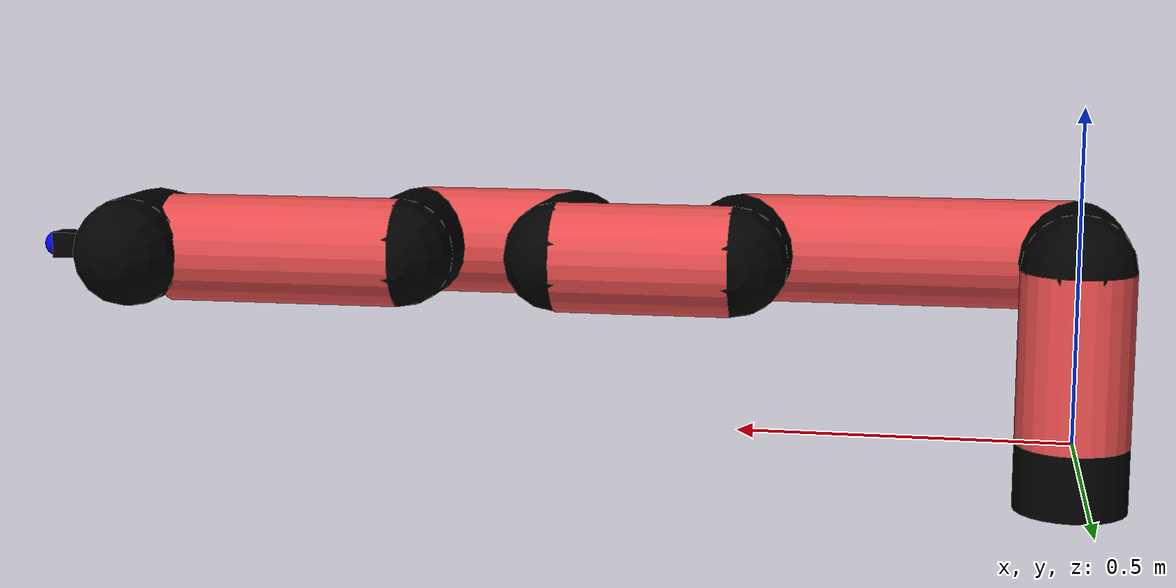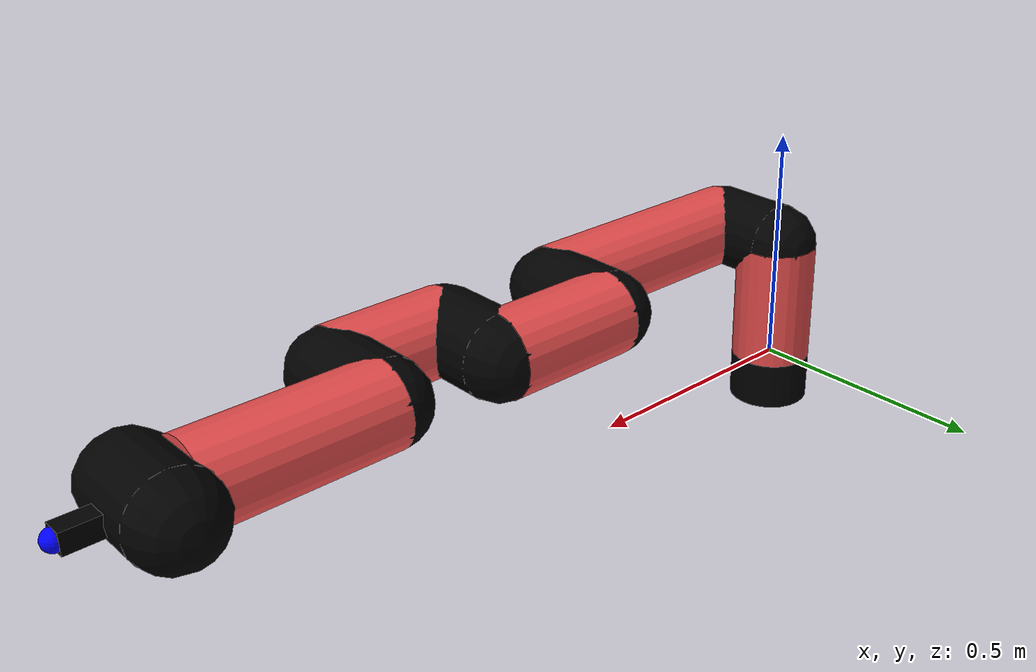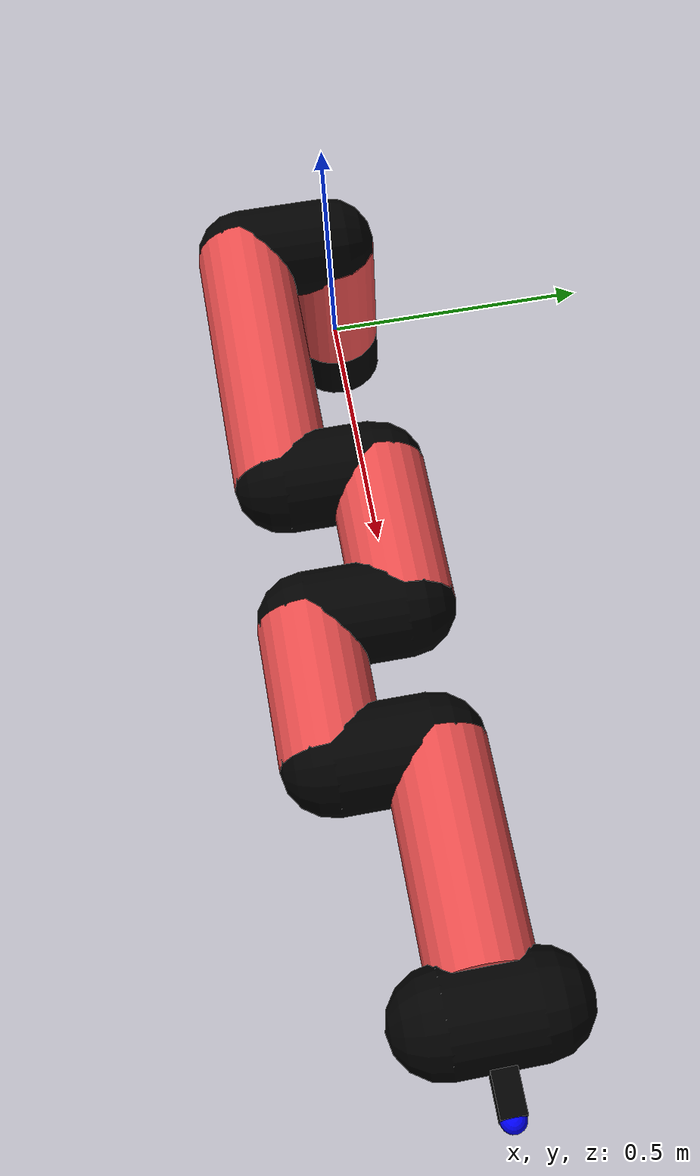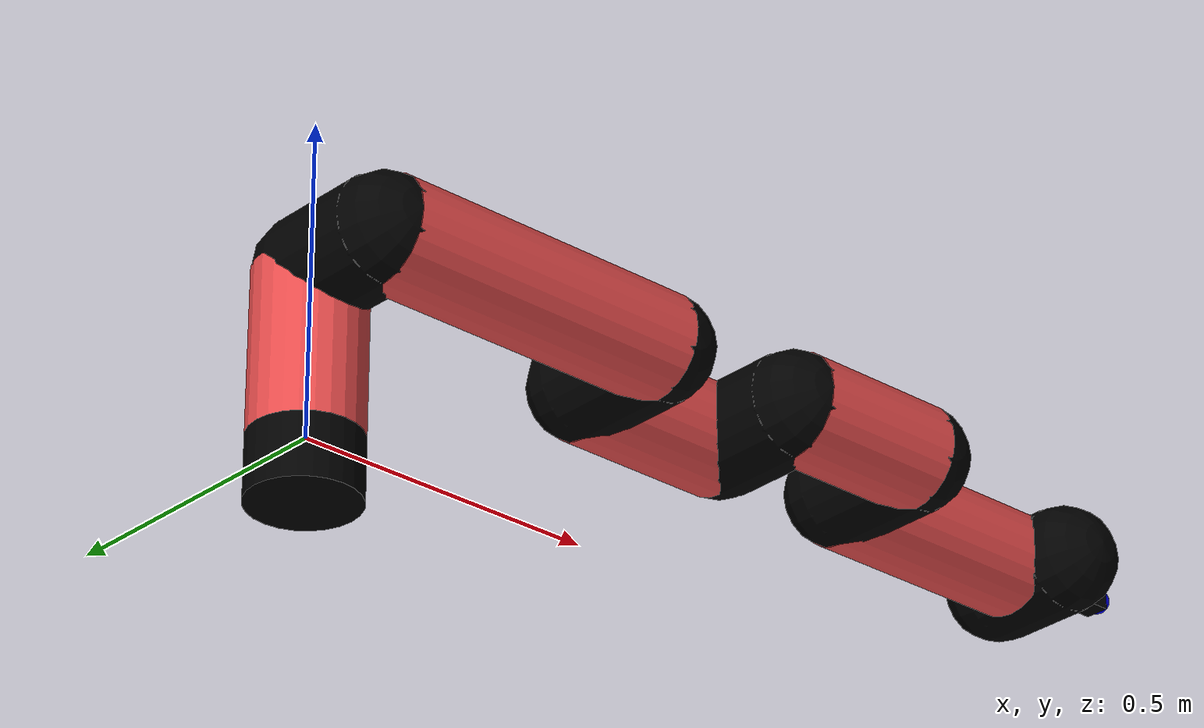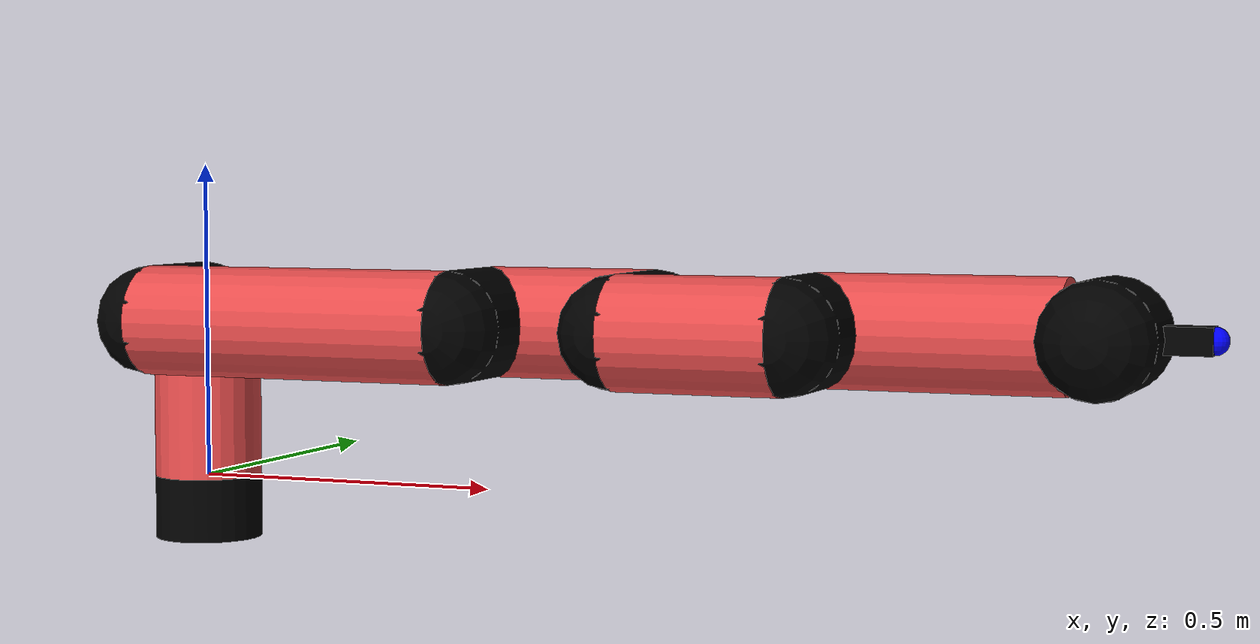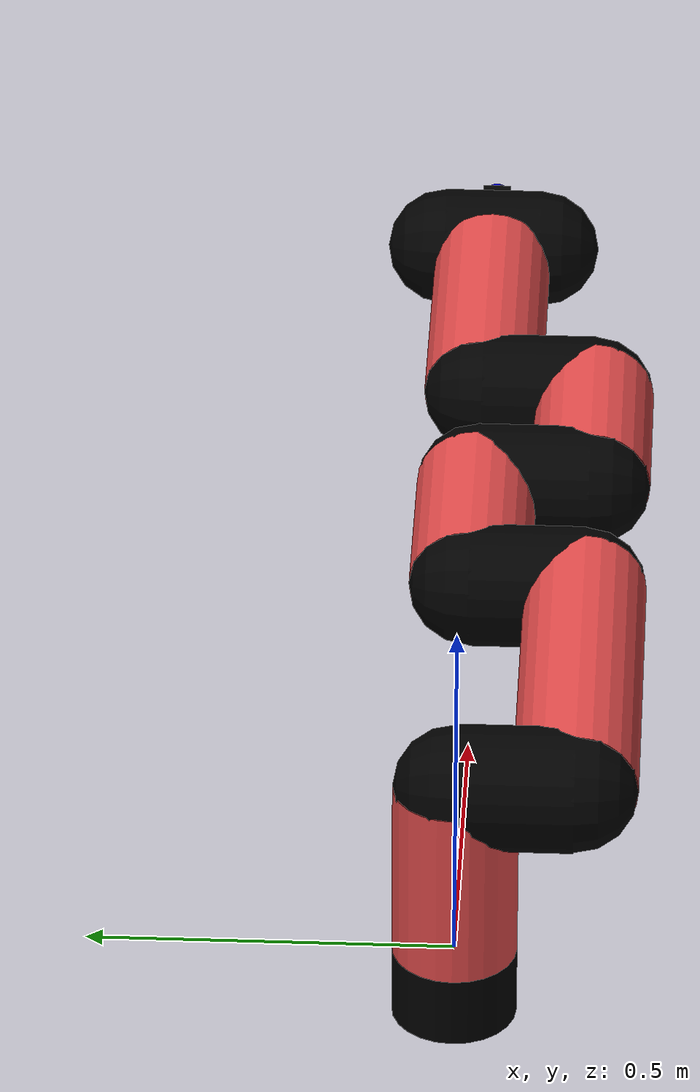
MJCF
<mujoco model="manipulator">
		<compiler angle="degree" coordinate="local" inertiafromgeom="auto" meshdir="meshes/"/>
		<option gravity="0 0 0" integrator="RK4" iterations="30" timestep="0.01"/>

		<default>
		<joint armature="1" limited="true" stiffness="10" damping="15" frictionloss="5.0"/>
		<geom conaffinity="1" condim="3" contype="1" friction=".5 .1 .1" margin="0.002"/>
		<motor ctrllimited="true"/>
		<position ctrllimited="true"/>
		</default>

		<asset>
		<texture builtin="gradient" height="100" rgb1="1.0 1.0 1.0" rgb2="1.0 1.0 1.0" type="skybox" width="100"/>
		<texture builtin="flat" height="32" name="arm_tex" rgb1="0.9 0.3 0.3" type="2d" width="32"/>
		<texture builtin="flat" height="32" name="gripper_tex" rgb1="0.0 0.0 0.0" type="cube" width="32"/>

		<material name="arm_mat" shininess="0.1" specular="0.1" texture="arm_tex"/>
		<material name="gripper_mat" shininess="1" specular="1" texture="gripper_tex"/>
		</asset>

		<worldbody>
		<light cutoff="45" diffuse=".8 .8 .8" dir="0 0.16 -1" directional="false" name="light" pos="0 -2.0 8.0" specular="0.3 0.3 0.3"/>

		<body name="base_link" pos="0 0 -0.1">
		<geom fromto="0 0 0 0 0 0.1" material="arm_mat" name="base_link" rgba="0.0 0.0 0.0 1" size="0.085" type="cylinder"/>
		</body>

		<body name="l1" pos="0 0 0">
<geom fromto="0 0 0 0 0 0.26" material="arm_mat" name="l1" rgba="0.9 0.3 0.3 1" size="0.085" type="cylinder"/>
<geom fromto="0 0 0.26 0 -0.16 0.26" material="arm_mat" name="l1_ex" rgba="0.0 0.0 0.0 1" size="0.085" type="capsule"/>
<joint axis="0 0 1" name="j1" pos="0 0 0" range="-90 90" damping="22.81" frictionloss="8.72"/>

<body name="l2" pos="0 -0.16 0.26">
<geom fromto="0 0 0 0.51 0 0" material="arm_mat" name="l2" rgba="0.9 0.3 0.3 1" size="0.085" type="cylinder"/>
<geom fromto="0.51 0 0 0.51 0.16 0" material="arm_mat" name="l2_ex" rgba="0.0 0.0 0.0 1" size="0.085" type="capsule"/>
<joint axis="-0.16 1.14 0.06" name="j2" pos="0 0 0" range="-90 60" damping="23.56" frictionloss="7.88"/>

<body name="l3" pos="0.51 0.16 0">
<geom fromto="0 0 0 0.27 0 0" material="arm_mat" name="l3" rgba="0.9 0.3 0.3 1" size="0.085" type="cylinder"/>
<geom fromto="0.27 0 0 0.27 -0.16 0" material="arm_mat" name="l3_ex" rgba="0.0 0.0 0.0 1" size="0.085" type="capsule"/>
<joint axis="-0.22 0.96 0.09" name="j3" pos="0 0 0" range="-30 60" damping="34.38" frictionloss="9.97"/>

<body name="l4" pos="0.27 -0.16 0">
<geom fromto="0 0 0 0.25 0 0" material="arm_mat" name="l4" rgba="0.9 0.3 0.3 1" size="0.085" type="cylinder"/>
<geom fromto="0.25 0 0 0.25 0.16 0" material="arm_mat" name="l4_ex" rgba="0.0 0.0 0.0 1" size="0.085" type="capsule"/>
<joint axis="0.21 0.75 0.24" name="j4" pos="0 0 0" range="-30 60" damping="30.02" frictionloss="11.47"/>

<body name="l5" pos="0.25 0.16 0">
<geom fromto="0 0 0 0.37 0 0" material="arm_mat" name="l5" rgba="0.9 0.3 0.3 1" size="0.085" type="cylinder"/>
<joint axis="-0.06 1.24 0.05" name="j5" pos="0 0 0" range="-30 60" damping="25.1" frictionloss="11.38"/>

<body name="gripper" pos="0.37 0 0">
<geom fromto="0.05 -0.07 0 0.05 0.07 0" material="gripper_mat" name="gripper" rgba="0.0 0.0 0.0 1" size="0.085" type="capsule"/><joint axis="1 0 0" name="j6" pos="0 0 0" range="-90 90" damping="15" frictionloss="5.0"/><body name="finger" pos="0.1 0 0">
<geom fromto="0 0.0 0 0.1 0.0 0" material="gripper_mat" name="finger" rgba="0.0 0.0 0.0 1" size="0.020 0.06 0.06" type="box"/>
</body>
<site name="current" pos="0.2 0. 0.0" rgba="0. 0. 1.0 1" size="0.02" type="sphere"/>
</body>
</body>
</body>
</body>
</body>
</body>
</worldbody>
<actuator>
<motor ctrllimited="true" ctrlrange="-1.0 1.0" joint="j1" gear="62.89"/>
<motor ctrllimited="true" ctrlrange="-1.0 1.0" joint="j2" gear="85.42"/>
<motor ctrllimited="true" ctrlrange="-1.0 1.0" joint="j3" gear="94.51"/>
<motor ctrllimited="true" ctrlrange="-1.0 1.0" joint="j4" gear="63.08"/>
<motor ctrllimited="true" ctrlrange="-1.0 1.0" joint="j5" gear="99.4"/>
<motor ctrllimited="true" ctrlrange="-1.0 1.0" joint="j6" gear="80"/>
</actuator>
</mujoco>
